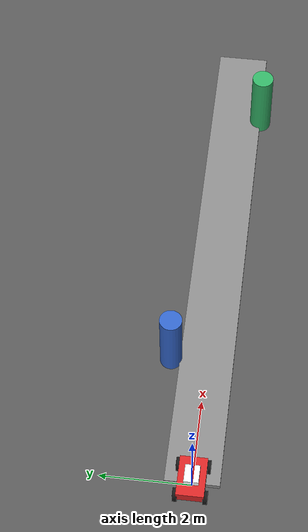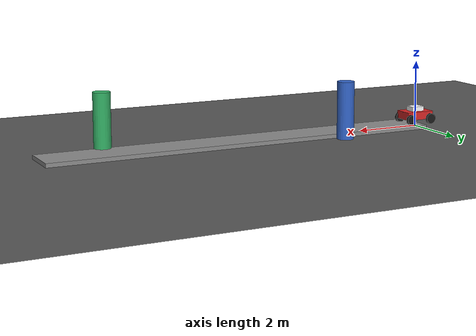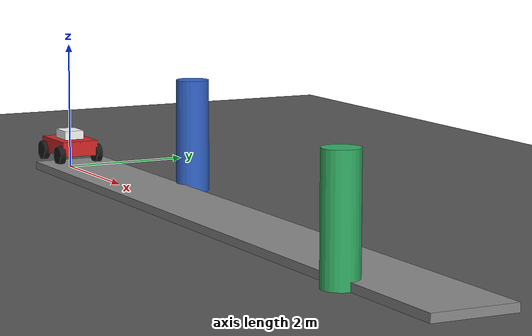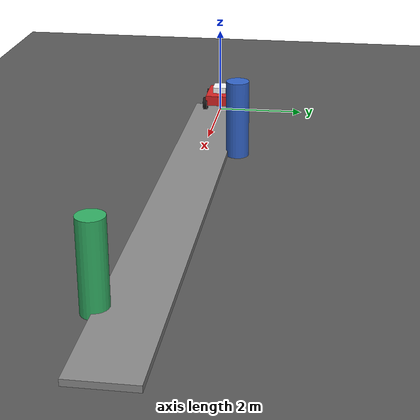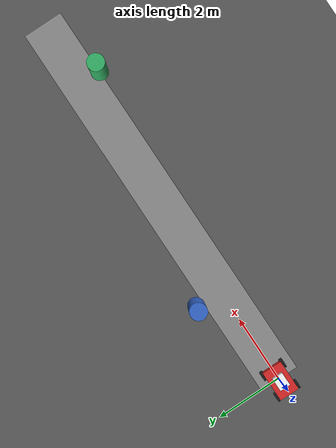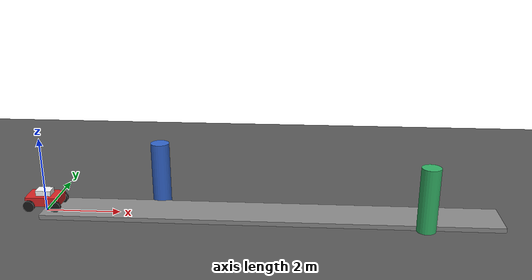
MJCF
<mujoco model="aed_rapid_delivery_amr">
  <compiler angle="radian" coordinate="local"/>
  <option gravity="0 0 -9.81" timestep="0.002" solver="Newton" iterations="50"/>

  <default>
    <geom contype="1" conaffinity="1" condim="3" friction="1.1 0.01 0.005"/>
  </default>

  <worldbody>
    <!-- Sidewalk Ground Plane -->
    <geom name="floor" type="plane" size="30 15 0.1" rgba="0.35 0.35 0.35 1"/>
    <light directional="true" pos="0 0 12" dir="0 0 -1" castshadow="false"/>

    <!-- 12 cm Vertical Sidewalk Curb Obstacle -->
    <geom name="curb_step" type="box" size="6 0.6 0.06" pos="6.0 0 0.06" rgba="0.55 0.55 0.55 1"/>

    <!-- Pedestrian Dynamic Obstacle Placeholders -->
    <body name="pedestrian_obs1" pos="3.0 0.8 0.85">
      <geom name="ped_geom1" type="cylinder" size="0.25 0.85" rgba="0.2 0.4 0.8 1" mass="70.0"/>
    </body>
    <body name="pedestrian_obs2" pos="10.0 -0.6 0.85">
      <geom name="ped_geom2" type="cylinder" size="0.25 0.85" rgba="0.2 0.7 0.4 1" mass="70.0"/>
    </body>

    <!-- 4-Wheel AMR Chassis -->
    <body name="amr_chassis" pos="0 0 0.35">
      <freejoint name="amr_root"/>
      <!-- Main Sprung Body (26.0 kg) -->
      <geom name="chassis_geom" type="box" size="0.45 0.30 0.12" rgba="0.85 0.15 0.15 1" mass="26.0"/>

      <!-- Secondary Viscoelastic AED Cradle Body (4.0 kg payload) -->
      <body name="aed_payload" pos="0 0 0.18">
        <joint name="aed_cradle_z" type="slide" axis="0 0 1" pos="0 0 0" limited="true" range="-0.04 0.04" damping="180.0" stiffness="2200.0"/>
        <geom name="aed_box" type="box" size="0.20 0.16 0.08" rgba="1 1 1 1" mass="4.0"/>
        <site name="payload_accelerometer" pos="0 0 0"/>
      </body>

      <!-- Front Left Wheel Assembly with Independent Suspension Slide Joint -->
      <body name="wheel_fl" pos="0.35 0.32 -0.10">
        <joint name="susp_fl" type="slide" axis="0 0 1" limited="true" range="-0.08 0.08" damping="350.0" stiffness="4500.0"/>
        <geom name="wheel_fl_geom" type="cylinder" size="0.15 0.05" zaxis="0 1 0" rgba="0.1 0.1 0.1 1" mass="2.25"/>
      </body>

      <!-- Front Right Wheel Assembly -->
      <body name="wheel_fr" pos="0.35 -0.32 -0.10">
        <joint name="susp_fr" type="slide" axis="0 0 1" limited="true" range="-0.08 0.08" damping="350.0" stiffness="4500.0"/>
        <geom name="wheel_fr_geom" type="cylinder" size="0.15 0.05" zaxis="0 1 0" rgba="0.1 0.1 0.1 1" mass="2.25"/>
      </body>

      <!-- Rear Left Wheel Assembly -->
      <body name="wheel_rl" pos="-0.35 0.32 -0.10">
        <joint name="susp_rl" type="slide" axis="0 0 1" limited="true" range="-0.08 0.08" damping="350.0" stiffness="4500.0"/>
        <geom name="wheel_rl_geom" type="cylinder" size="0.15 0.05" zaxis="0 1 0" rgba="0.1 0.1 0.1 1" mass="2.25"/>
      </body>

      <!-- Rear Right Wheel Assembly -->
      <body name="wheel_rr" pos="-0.35 -0.32 -0.10">
        <joint name="susp_rr" type="slide" axis="0 0 1" limited="true" range="-0.08 0.08" damping="350.0" stiffness="4500.0"/>
        <geom name="wheel_rr_geom" type="cylinder" size="0.15 0.05" zaxis="0 1 0" rgba="0.1 0.1 0.1 1" mass="2.25"/>
      </body>

      <!-- Sensor Sites -->
      <site name="chassis_imu" pos="0 0 0"/>
      <site name="lidar_site" pos="0.45 0 0.10"/>
    </body>
  </worldbody>

  <actuator>
    <!-- Sprung Drive Motors -->
    <motor name="motor_drive" body="amr_chassis" gear="1 0 0 0 0 0" ctrllimited="true" ctrlrange="-300 300"/>
    <motor name="motor_steer" body="amr_chassis" gear="0 0 0 0 0 1" ctrllimited="true" ctrlrange="-150 150"/>
  </actuator>

  <sensor>
    <accelerometer name="aed_shock_sensor" site="payload_accelerometer"/>
    <gyro name="chassis_gyro" site="chassis_imu"/>
  </sensor>
</mujoco>
